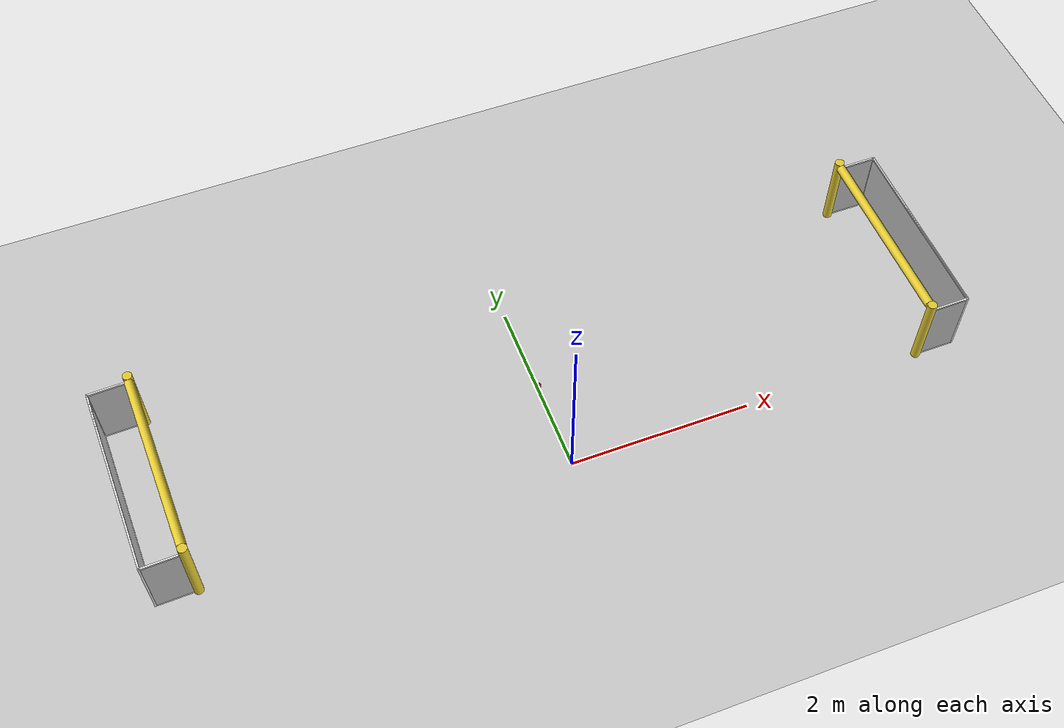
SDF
<sdf version="1.4">
 <world name="default">
  <light name="sun" type="directional">
   <pose>0 0 10 0 -0 0</pose>
   <diffuse>0.8 0.8 0.8 1</diffuse>
   <specular>0.2 0.2 0.2 1</specular>
   <attenuation>
    <range>1000</range>
    <constant>0.9</constant>
    <linear>0.01</linear>
    <quadratic>0.001</quadratic>
   </attenuation>
   <direction>-0.5 0.1 -0.9</direction>
  </light>
  <model name="ground_plane">
   <static>1</static>
   <link name="link">
    <collision name="collision">
     <geometry><plane><normal>0 0 1</normal><size>100 100</size></plane></geometry>
     <surface><friction><ode><mu>100</mu><mu2>50</mu2></ode></friction></surface>
    </collision>
    <visual name="visual">
     <cast_shadows>0</cast_shadows>
     <geometry><plane><normal>0 0 1</normal><size>100 100</size></plane></geometry>
     <material>
      <script><uri>file://media/materials/scripts/gazebo.material</uri><name>Gazebo/Grey</name></script>
     </material>
    </visual>
    <velocity_decay><linear>0</linear><angular>0</angular></velocity_decay>
   </link>
  </model>
  <physics type="ode">
   <max_step_size>0.001</max_step_size>
   <real_time_factor>1</real_time_factor>
   <real_time_update_rate>1000</real_time_update_rate>
   <gravity>0 0 -9.8</gravity>
  </physics>
  <scene><ambient>0.4 0.4 0.4 1</ambient><background>0.7 0.7 0.7 1</background><shadows>1</shadows></scene>
  <spherical_coordinates>
   <surface_model>EARTH_WGS84</surface_model>
   <latitude_deg>0</latitude_deg>
   <longitude_deg>0</longitude_deg>
   <elevation>0</elevation>
   <heading_deg>0</heading_deg>
  </spherical_coordinates>
  <model name="RoboCup 3D Simulator Goal">
   <static>1</static>
   <link name="left_post">
    <pose>0 1.05 0.45 0 -0 0</pose>
    <collision name="collision">
     <geometry><cylinder><radius>0.05</radius><length>0.9</length></cylinder></geometry>
    </collision>
    <visual name="visual">
     <geometry><cylinder><radius>0.05</radius><length>0.9</length></cylinder></geometry>
     <material>
      <script><uri>file://media/materials/scripts/gazebo.material</uri><name>Gazebo/ZincYellow</name></script>
     </material>
    </visual>
    <velocity_decay><linear>0</linear><angular>0</angular></velocity_decay>
   </link>
   <link name="left_support_horiz_lower">
    <pose>0.24 1.05 0.01 0 -0 0</pose>
    <collision name="collision"><geometry><box><size>0.38 0.02 0.02</size></box></geometry></collision>
    <visual name="visual">
     <geometry><box><size>0.38 0.02 0.02</size></box></geometry>
     <material>
      <script><uri>file://media/materials/scripts/gazebo.material</uri><name>Gazebo/White</name></script>
     </material>
    </visual>
    <velocity_decay><linear>0</linear><angular>0</angular></velocity_decay>
   </link>
   <link name="left_support_horiz_upper">
    <pose>0.24 1.05 0.79 0 -0 0</pose>
    <collision name="collision"><geometry><box><size>0.38 0.02 0.02</size></box></geometry></collision>
    <visual name="visual">
     <geometry><box><size>0.38 0.02 0.02</size></box></geometry>
     <material>
      <script><uri>file://media/materials/scripts/gazebo.material</uri><name>Gazebo/White</name></script>
     </material>
    </visual>
    <velocity_decay><linear>0</linear><angular>0</angular></velocity_decay>
   </link>
   <link name="left_support_vertical">
    <pose>0.44 1.05 0.4 3.14159 1.57079 3.14159</pose>
    <collision name="collision"><geometry><box><size>0.8 0.02 0.02</size></box></geometry></collision>
    <visual name="visual">
     <geometry><box><size>0.8 0.02 0.02</size></box></geometry>
     <material>
      <script><uri>file://media/materials/scripts/gazebo.material</uri><name>Gazebo/White</name></script>
     </material>
    </visual>
    <velocity_decay><linear>0</linear><angular>0</angular></velocity_decay>
   </link>
   <link name="right_support_horiz_lower">
    <pose>0.24 -1.05 0.01 0 -0 0</pose>
    <collision name="collision"><geometry><box><size>0.38 0.02 0.02</size></box></geometry></collision>
    <visual name="visual">
     <geometry><box><size>0.38 0.02 0.02</size></box></geometry>
     <material>
      <script><uri>file://media/materials/scripts/gazebo.material</uri><name>Gazebo/White</name></script>
     </material>
    </visual>
    <velocity_decay><linear>0</linear><angular>0</angular></velocity_decay>
   </link>
   <link name="right_support_horiz_upper">
    <pose>0.24 -1.05 0.79 0 -0 0</pose>
    <collision name="collision"><geometry><box><size>0.38 0.02 0.02</size></box></geometry></collision>
    <visual name="visual">
     <geometry><box><size>0.38 0.02 0.02</size></box></geometry>
     <material>
      <script><uri>file://media/materials/scripts/gazebo.material</uri><name>Gazebo/White</name></script>
     </material>
    </visual>
    <velocity_decay><linear>0</linear><angular>0</angular></velocity_decay>
   </link>
   <link name="right_support_vertical">
    <pose>0.44 -1.05 0.4 3.14159 1.57079 3.14159</pose>
    <collision name="collision"><geometry><box><size>0.8 0.02 0.02</size></box></geometry></collision>
    <visual name="visual">
     <geometry><box><size>0.8 0.02 0.02</size></box></geometry>
     <material>
      <script><uri>file://media/materials/scripts/gazebo.material</uri><name>Gazebo/White</name></script>
     </material>
    </visual>
    <velocity_decay><linear>0</linear><angular>0</angular></velocity_decay>
   </link>
   <link name="center_support_horiz_lower">
    <pose>0.44 0 0.01 3.14159 1.57079 3.14159</pose>
    <collision name="collision"><geometry><box><size>0.02 2.08 0.02</size></box></geometry></collision>
    <visual name="visual">
     <geometry><box><size>0.02 2.08 0.02</size></box></geometry>
     <material>
      <script><uri>file://media/materials/scripts/gazebo.material</uri><name>Gazebo/White</name></script>
     </material>
    </visual>
    <velocity_decay><linear>0</linear><angular>0</angular></velocity_decay>
   </link>
   <link name="center_support_horiz_upper">
    <pose>0.44 0 0.79 3.14159 1.57079 3.14159</pose>
    <collision name="collision"><geometry><box><size>0.02 2.08 0.02</size></box></geometry></collision>
    <visual name="visual">
     <geometry><box><size>0.02 2.08 0.02</size></box></geometry>
     <material>
      <script><uri>file://media/materials/scripts/gazebo.material</uri><name>Gazebo/White</name></script>
     </material>
    </visual>
    <velocity_decay><linear>0</linear><angular>0</angular></velocity_decay>
   </link>
   <link name="right_post">
    <pose>0 -1.05 0.45 0 -0 0</pose>
    <collision name="collision">
     <geometry><cylinder><radius>0.05</radius><length>0.9</length></cylinder></geometry>
    </collision>
    <visual name="visual">
     <geometry><cylinder><radius>0.05</radius><length>0.9</length></cylinder></geometry>
     <material>
      <script><uri>file://media/materials/scripts/gazebo.material</uri><name>Gazebo/ZincYellow</name></script>
     </material>
    </visual>
    <velocity_decay><linear>0</linear><angular>0</angular></velocity_decay>
   </link>
   <link name="crossbar">
    <pose>0 0 0.85 1.57 1.57 1.39418e-13</pose>
    <collision name="collision">
     <geometry><cylinder><radius>0.05</radius><length>2</length></cylinder></geometry>
    </collision>
    <visual name="visual">
     <geometry><cylinder><radius>0.05</radius><length>2</length></cylinder></geometry>
     <material>
      <script><uri>file://media/materials/scripts/gazebo.material</uri><name>Gazebo/ZincYellow</name></script>
     </material>
    </visual>
    <velocity_decay><linear>0</linear><angular>0</angular></velocity_decay>
   </link>
   <link name="center_net">
    <pose>0.44 0 0.4 0 -0 0</pose>
    <collision name="collision"><geometry><box><size>0.01 2.1 0.8</size></box></geometry></collision>
    <visual name="visual">
     <geometry><box><size>0.01 2.1 0.8</size></box></geometry>
     <material>
      <script>
       <uri>model://robocup09_spl_field/materials/scripts/</uri>
       <uri>model://robocup09_spl_field/materials/textures/</uri>
       <name>RoboCup/Net</name>
      </script>
     </material>
    </visual>
    <velocity_decay><linear>0</linear><angular>0</angular></velocity_decay>
   </link>
   <link name="left_net">
    <pose>0.24 1.05 0.4 0 -0 0</pose>
    <collision name="collision"><geometry><box><size>0.38 0.01 0.76</size></box></geometry></collision>
    <visual name="visual">
     <geometry><box><size>0.38 0.01 0.76</size></box></geometry>
     <material>
      <script>
       <uri>model://robocup09_spl_field/materials/scripts/</uri>
       <uri>model://robocup09_spl_field/materials/textures/</uri>
       <name>RoboCup/Net</name>
      </script>
     </material>
    </visual>
    <velocity_decay><linear>0</linear><angular>0</angular></velocity_decay>
   </link>
   <link name="right_net">
    <pose>0.24 -1.05 0.4 0 -0 0</pose>
    <collision name="collision"><geometry><box><size>0.38 0.01 0.76</size></box></geometry></collision>
    <visual name="visual">
     <geometry><box><size>0.38 0.01 0.76</size></box></geometry>
     <material>
      <script>
       <uri>model://robocup09_spl_field/materials/scripts/</uri>
       <uri>model://robocup09_spl_field/materials/textures/</uri>
       <name>RoboCup/Net</name>
      </script>
     </material>
    </visual>
    <velocity_decay><linear>0</linear><angular>0</angular></velocity_decay>
   </link>
   <pose>4 1 0 0 -0 0</pose>
  </model>
  <model name="RoboCup 3D Simulator Goal_0">
   <static>1</static>
   <link name="left_post">
    <pose>0 1.05 0.45 0 -0 0</pose>
    <collision name="collision">
     <geometry><cylinder><radius>0.05</radius><length>0.9</length></cylinder></geometry>
    </collision>
    <visual name="visual">
     <geometry><cylinder><radius>0.05</radius><length>0.9</length></cylinder></geometry>
     <material>
      <script><uri>file://media/materials/scripts/gazebo.material</uri><name>Gazebo/ZincYellow</name></script>
     </material>
    </visual>
    <velocity_decay><linear>0</linear><angular>0</angular></velocity_decay>
   </link>
   <link name="left_support_horiz_lower">
    <pose>0.24 1.05 0.01 0 -0 0</pose>
    <collision name="collision"><geometry><box><size>0.38 0.02 0.02</size></box></geometry></collision>
    <visual name="visual">
     <geometry><box><size>0.38 0.02 0.02</size></box></geometry>
     <material>
      <script><uri>file://media/materials/scripts/gazebo.material</uri><name>Gazebo/White</name></script>
     </material>
    </visual>
    <velocity_decay><linear>0</linear><angular>0</angular></velocity_decay>
   </link>
   <link name="left_support_horiz_upper">
    <pose>0.24 1.05 0.79 0 -0 0</pose>
    <collision name="collision"><geometry><box><size>0.38 0.02 0.02</size></box></geometry></collision>
    <visual name="visual">
     <geometry><box><size>0.38 0.02 0.02</size></box></geometry>
     <material>
      <script><uri>file://media/materials/scripts/gazebo.material</uri><name>Gazebo/White</name></script>
     </material>
    </visual>
    <velocity_decay><linear>0</linear><angular>0</angular></velocity_decay>
   </link>
   <link name="left_support_vertical">
    <pose>0.44 1.05 0.4 3.14159 1.57079 3.14159</pose>
    <collision name="collision"><geometry><box><size>0.8 0.02 0.02</size></box></geometry></collision>
    <visual name="visual">
     <geometry><box><size>0.8 0.02 0.02</size></box></geometry>
     <material>
      <script><uri>file://media/materials/scripts/gazebo.material</uri><name>Gazebo/White</name></script>
     </material>
    </visual>
    <velocity_decay><linear>0</linear><angular>0</angular></velocity_decay>
   </link>
   <link name="right_support_horiz_lower">
    <pose>0.24 -1.05 0.01 0 -0 0</pose>
    <collision name="collision"><geometry><box><size>0.38 0.02 0.02</size></box></geometry></collision>
    <visual name="visual">
     <geometry><box><size>0.38 0.02 0.02</size></box></geometry>
     <material>
      <script><uri>file://media/materials/scripts/gazebo.material</uri><name>Gazebo/White</name></script>
     </material>
    </visual>
    <velocity_decay><linear>0</linear><angular>0</angular></velocity_decay>
   </link>
   <link name="right_support_horiz_upper">
    <pose>0.24 -1.05 0.79 0 -0 0</pose>
    <collision name="collision"><geometry><box><size>0.38 0.02 0.02</size></box></geometry></collision>
    <visual name="visual">
     <geometry><box><size>0.38 0.02 0.02</size></box></geometry>
     <material>
      <script><uri>file://media/materials/scripts/gazebo.material</uri><name>Gazebo/White</name></script>
     </material>
    </visual>
    <velocity_decay><linear>0</linear><angular>0</angular></velocity_decay>
   </link>
   <link name="right_support_vertical">
    <pose>0.44 -1.05 0.4 3.14159 1.57079 3.14159</pose>
    <collision name="collision"><geometry><box><size>0.8 0.02 0.02</size></box></geometry></collision>
    <visual name="visual">
     <geometry><box><size>0.8 0.02 0.02</size></box></geometry>
     <material>
      <script><uri>file://media/materials/scripts/gazebo.material</uri><name>Gazebo/White</name></script>
     </material>
    </visual>
    <velocity_decay><linear>0</linear><angular>0</angular></velocity_decay>
   </link>
   <link name="center_support_horiz_lower">
    <pose>0.44 0 0.01 3.14159 1.57079 3.14159</pose>
    <collision name="collision"><geometry><box><size>0.02 2.08 0.02</size></box></geometry></collision>
    <visual name="visual">
     <geometry><box><size>0.02 2.08 0.02</size></box></geometry>
     <material>
      <script><uri>file://media/materials/scripts/gazebo.material</uri><name>Gazebo/White</name></script>
     </material>
    </visual>
    <velocity_decay><linear>0</linear><angular>0</angular></velocity_decay>
   </link>
   <link name="center_support_horiz_upper">
    <pose>0.44 0 0.79 3.14159 1.57079 3.14159</pose>
    <collision name="collision"><geometry><box><size>0.02 2.08 0.02</size></box></geometry></collision>
    <visual name="visual">
     <geometry><box><size>0.02 2.08 0.02</size></box></geometry>
     <material>
      <script><uri>file://media/materials/scripts/gazebo.material</uri><name>Gazebo/White</name></script>
     </material>
    </visual>
    <velocity_decay><linear>0</linear><angular>0</angular></velocity_decay>
   </link>
   <link name="right_post">
    <pose>0 -1.05 0.45 0 -0 0</pose>
    <collision name="collision">
     <geometry><cylinder><radius>0.05</radius><length>0.9</length></cylinder></geometry>
    </collision>
    <visual name="visual">
     <geometry><cylinder><radius>0.05</radius><length>0.9</length></cylinder></geometry>
     <material>
      <script><uri>file://media/materials/scripts/gazebo.material</uri><name>Gazebo/ZincYellow</name></script>
     </material>
    </visual>
    <velocity_decay><linear>0</linear><angular>0</angular></velocity_decay>
   </link>
   <link name="crossbar">
    <pose>0 0 0.85 1.57 1.57 1.39418e-13</pose>
    <collision name="collision">
     <geometry><cylinder><radius>0.05</radius><length>2</length></cylinder></geometry>
    </collision>
    <visual name="visual">
     <geometry><cylinder><radius>0.05</radius><length>2</length></cylinder></geometry>
     <material>
      <script><uri>file://media/materials/scripts/gazebo.material</uri><name>Gazebo/ZincYellow</name></script>
     </material>
    </visual>
    <velocity_decay><linear>0</linear><angular>0</angular></velocity_decay>
   </link>
   <link name="center_net">
    <pose>0.44 0 0.4 0 -0 0</pose>
    <collision name="collision"><geometry><box><size>0.01 2.1 0.8</size></box></geometry></collision>
    <visual name="visual">
     <geometry><box><size>0.01 2.1 0.8</size></box></geometry>
     <material>
      <script>
       <uri>model://robocup09_spl_field/materials/scripts/</uri>
       <uri>model://robocup09_spl_field/materials/textures/</uri>
       <name>RoboCup/Net</name>
      </script>
     </material>
    </visual>
    <velocity_decay><linear>0</linear><angular>0</angular></velocity_decay>
   </link>
   <link name="left_net">
    <pose>0.24 1.05 0.4 0 -0 0</pose>
    <collision name="collision"><geometry><box><size>0.38 0.01 0.76</size></box></geometry></collision>
    <visual name="visual">
     <geometry><box><size>0.38 0.01 0.76</size></box></geometry>
     <material>
      <script>
       <uri>model://robocup09_spl_field/materials/scripts/</uri>
       <uri>model://robocup09_spl_field/materials/textures/</uri>
       <name>RoboCup/Net</name>
      </script>
     </material>
    </visual>
    <velocity_decay><linear>0</linear><angular>0</angular></velocity_decay>
   </link>
   <link name="right_net">
    <pose>0.24 -1.05 0.4 0 -0 0</pose>
    <collision name="collision"><geometry><box><size>0.38 0.01 0.76</size></box></geometry></collision>
    <visual name="visual">
     <geometry><box><size>0.38 0.01 0.76</size></box></geometry>
     <material>
      <script>
       <uri>model://robocup09_spl_field/materials/scripts/</uri>
       <uri>model://robocup09_spl_field/materials/textures/</uri>
       <name>RoboCup/Net</name>
      </script>
     </material>
    </visual>
    <velocity_decay><linear>0</linear><angular>0</angular></velocity_decay>
   </link>
   <pose>-3.99646 1.02963 0 0 0 -3.11404</pose>
  </model>
  <model name="cricket_ball">
   <link name="link">
    <pose>0 0 0.0375 0 -0 0</pose>
    <inertial>
     <mass>0.105</mass>
     <inertia><ixx>9e-05</ixx><ixy>0</ixy><ixz>0</ixz><iyy>9e-05</iyy><iyz>0</iyz><izz>9e-05</izz></inertia>
    </inertial>
    <collision name="collision">
     <geometry><sphere><radius>0.037</radius></sphere></geometry>
     <surface>
      <bounce><restitution_coefficient>0.5</restitution_coefficient><threshold>0.01</threshold></bounce>
      <friction><ode><mu>1.0</mu><mu2>1.0</mu2></ode></friction>
      <contact><ode><soft_cfm>0.001</soft_cfm><soft_erp>0.2</soft_erp></ode></contact>
     </surface>
    </collision>
    <visual name="visual">
     <geometry><sphere><radius>0.037</radius></sphere></geometry>
     <material>
      <script><uri>file://media/materials/scripts/gazebo.material</uri><name>Gazebo/Red</name></script>
     </material>
    </visual>
    <velocity_decay><linear>0.01</linear><angular>0.01</angular></velocity_decay>
   </link>
   <pose>0 1 0.01 0 -0 0</pose>
   <static>0</static>
  </model>
  <plugin name="gazebo_ros_state" filename="libgazebo_ros_state.so">
   <ros><namespace>/gazebo</namespace></ros>
   <update_rate>5.0</update_rate>
  </plugin>
 </world>
</sdf>
